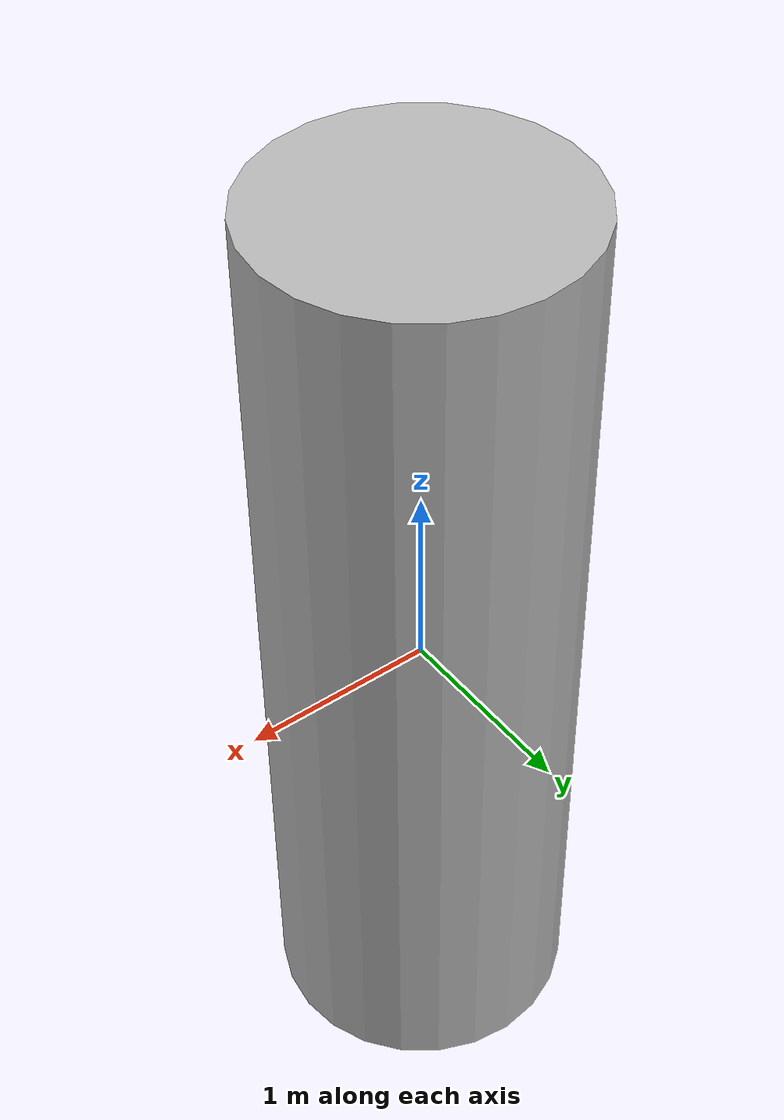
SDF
<?xml version="1.0" ?>
<sdf version="1.5">
  <model name="beer_large">
    <link name="link">
      <pose>0 0 0.115 0 0 0</pose>
      <inertial>
        <mass>1.0</mass>
        <inertia>
          <ixx>0</ixx>
          <ixy>0</ixy>
          <ixz>0</ixz>
          <iyy>0</iyy>
          <iyz>0</iyz>
          <izz>0</izz>
        </inertia>
      </inertial>
      <collision name="collision">
        <geometry>
          <cylinder>
            <radius>0.8000</radius>
            <length>5.0000</length>
          </cylinder>
        </geometry>
      </collision>
      <visual name="visual">
        <geometry>
          <cylinder>
            <radius>0.8000</radius>
            <length>5.0000</length>
          </cylinder>
        </geometry>
        <material>
          <script>
            <uri>model://beer_large/materials/scripts</uri>
            <uri>model://beer_large/materials/textures</uri>
            <name>Beer_Large/Diffuse</name>
          </script>
        </material>
      </visual>
    </link>
  </model>
</sdf>
